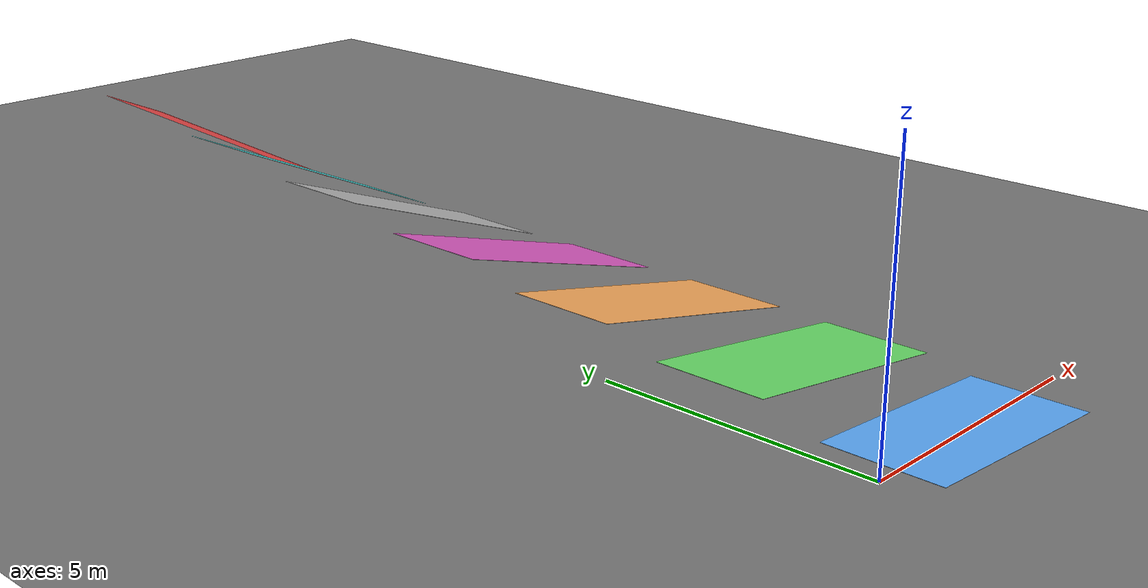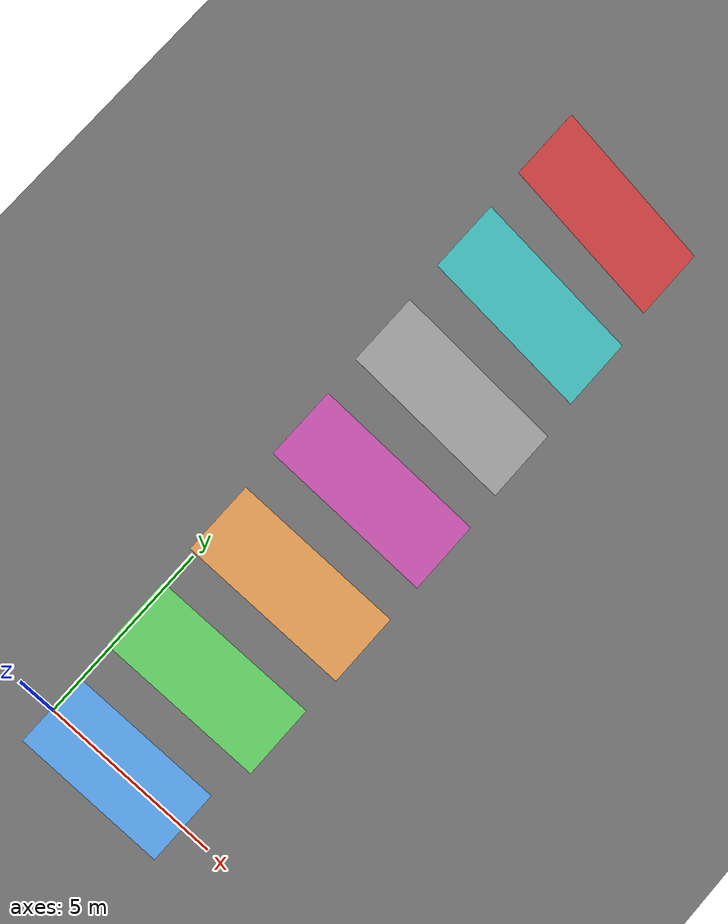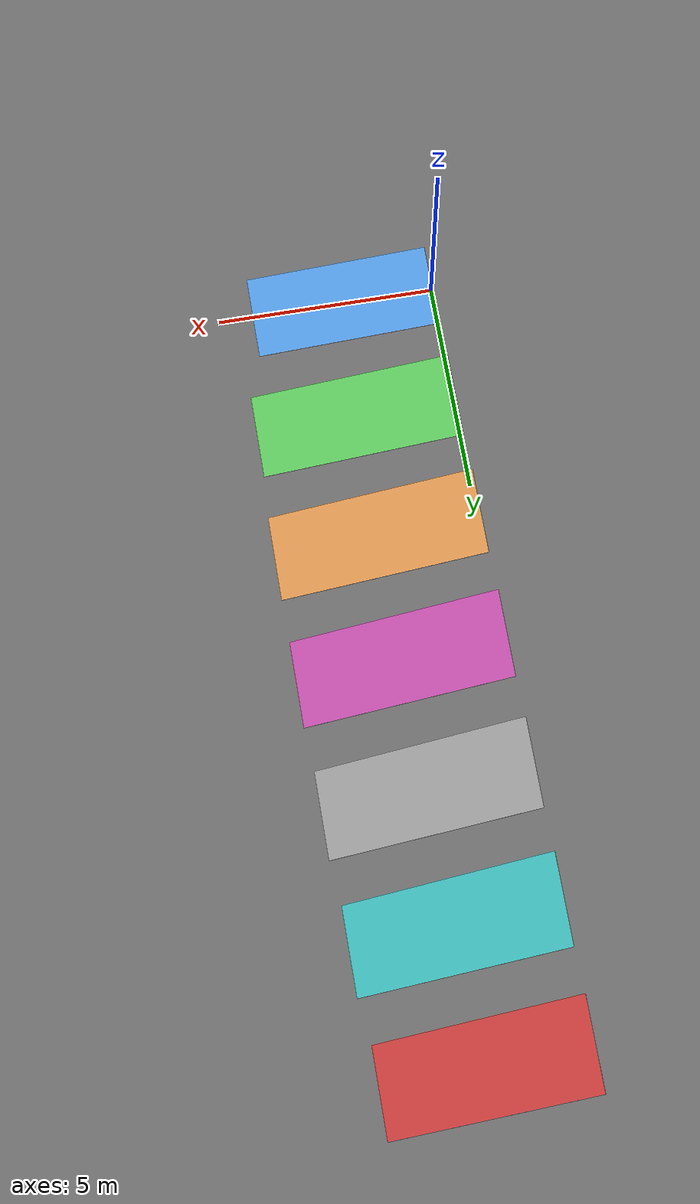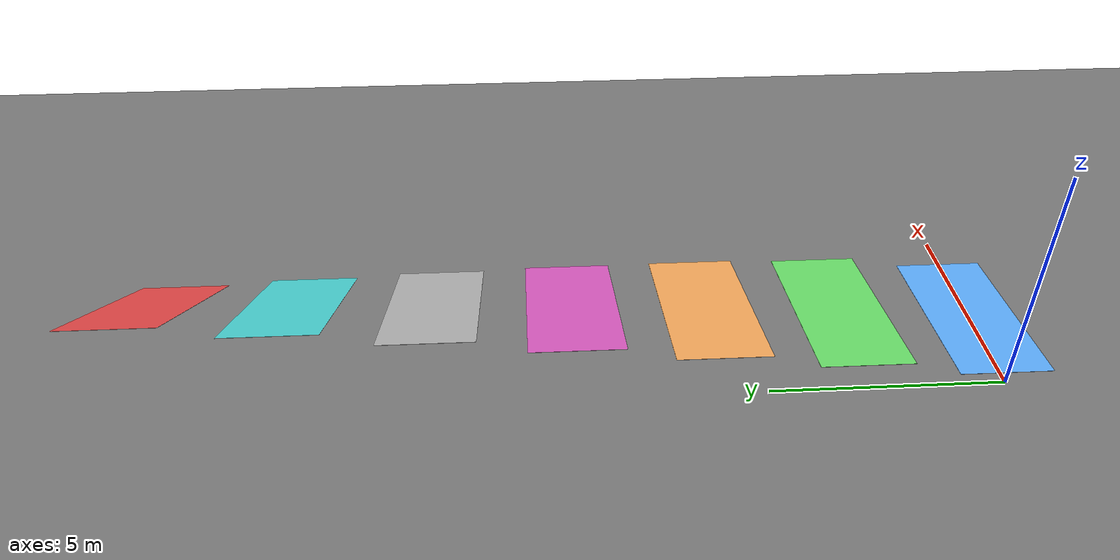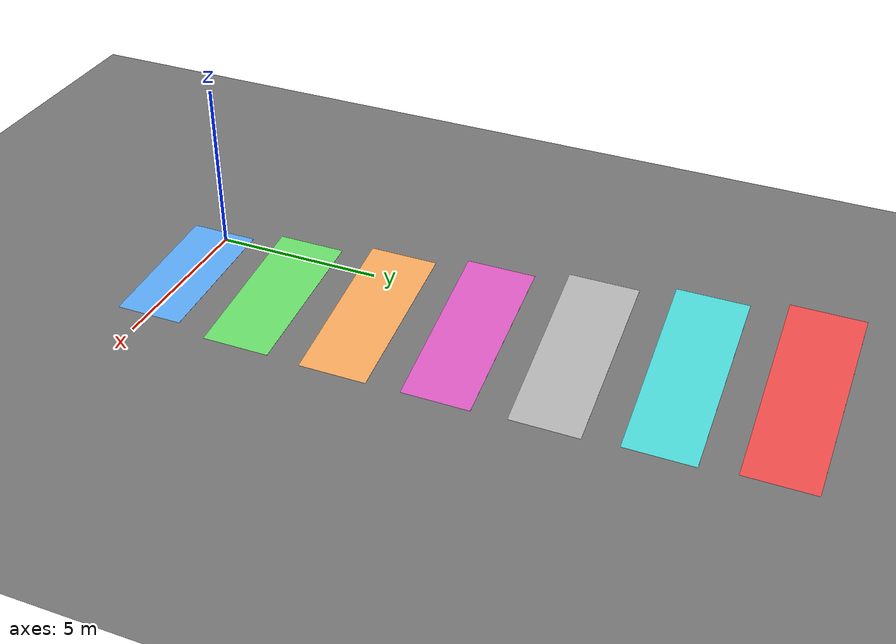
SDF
<?xml version="1.0"?>
<sdf version="1.7">
  <world name="rampe_test_thin_fix">

    <!-- Fisica -->
    <physics name="ode" type="ode">
      <max_step_size>0.001</max_step_size>
      <real_time_update_rate>1000</real_time_update_rate>
      <real_time_factor>1</real_time_factor>
    </physics>
    <gravity>0 0 -9.81</gravity>

    <!-- Luce direzionale -->
    <light type="directional" name="sun">
      <pose>0 0 10 0 0 0</pose>
      <diffuse>1 1 1 1</diffuse>
      <specular>0.1 0.1 0.1 1</specular>
      <direction>-0.5 0.5 -1</direction>
      <cast_shadows>true</cast_shadows>
    </light>

    <!-- Ground -->
    <model name="ground">
      <static>true</static>
      <link name="link">
        <collision name="col"><geometry><plane><normal>0 0 1</normal><size>200 200</size></plane></geometry></collision>
        <visual name="vis">
          <geometry><plane><normal>0 0 1</normal><size>200 200</size></plane></geometry>
          <material><ambient>0.4 0.4 0.4 1</ambient><diffuse>0.45 0.45 0.45 1</diffuse></material>
        </visual>
      </link>
    </model>

    <!-- Parametri rampe: L=5, W=2, T=0.05. Affiancate lungo Y (0,3,6,9,12,15,18). Si sale verso +X. -->

    <model name="rampa_04">
      <static>true</static>
      <pose>2.495 0 0.097 0 0.069813 0</pose>
      <link name="link">
        <collision name="col"><geometry><box><size>5 2 0.005</size></box></geometry></collision>
        <visual name="vis"><geometry><box><size>5 2 0.005</size></box></geometry>
          <material><ambient>0.35 0.65 0.95 1</ambient><diffuse>0.35 0.65 0.95 1</diffuse></material></visual>
      </link>
    </model>

    <model name="rampa_08">
      <static>true</static>
      <pose>2.474 3 0.271 0 0.139626 0</pose>
      <link name="link">
        <collision name="col"><geometry><box><size>5 2 0.005</size></box></geometry></collision>
        <visual name="vis"><geometry><box><size>5 2 0.005</size></box></geometry>
          <material><ambient>0.40 0.85 0.40 1</ambient><diffuse>0.40 0.85 0.40 1</diffuse></material></visual>
      </link>
    </model>

    <model name="rampa_12">
      <static>true</static>
      <pose>2.442 6 0.442 0 0.209440 0</pose>
        <link name="link">
        <collision name="col"><geometry><box><size>5 2 0.005</size></box></geometry></collision>
        <visual name="vis"><geometry><box><size>5 2 0.005</size></box></geometry>
          <material><ambient>0.95 0.65 0.35 1</ambient><diffuse>0.95 0.65 0.35 1</diffuse></material></visual>
      </link>
    </model>

    <model name="rampa_16">
      <static>true</static>
      <pose>2.398 9 0.611 0 0.279253 0</pose>
        <link name="link">
        <collision name="col"><geometry><box><size>5 2 0.005</size></box></geometry></collision>
        <visual name="vis"><geometry><box><size>5 2 0.005</size></box></geometry>
          <material><ambient>0.85 0.35 0.75 1</ambient><diffuse>0.85 0.35 0.75 1</diffuse></material></visual>
      </link>
    </model>

    <model name="rampa_20">
      <static>true</static>
      <pose>2.343 12 0.777 0 0.349066 0</pose>
        <link name="link">
        <collision name="col"><geometry><box><size>5 2 0.005</size></box></geometry></collision>
        <visual name="vis"><geometry><box><size>5 2 0.005</size></box></geometry>
          <material><ambient>0.70 0.70 0.70 1</ambient><diffuse>0.70 0.70 0.70 1</diffuse></material></visual>
      </link>
    </model>

    <model name="rampa_24">
      <static>true</static>
      <pose>2.276 15 0.938 0 0.418879 0</pose>
      <link name="link">
        <collision name="col"><geometry><box><size>5 2 0.005</size></box></geometry></collision>
        <visual name="vis"><geometry><box><size>5 2 0.005</size></box></geometry>
          <material><ambient>0.30 0.85 0.85 1</ambient><diffuse>0.30 0.85 0.85 1</diffuse></material></visual>
      </link>
    </model>

    <model name="rampa_28">
      <static>true</static>
      <pose>2.198 18 1.094 0 0.488692 0</pose>
      <link name="link">
        <collision name="col"><geometry><box><size>5 2 0.005</size></box></geometry></collision>
        <visual name="vis"><geometry><box><size>5 2 0.005</size></box></geometry>
          <material><ambient>0.95 0.30 0.30 1</ambient><diffuse>0.95 0.30 0.30 1</diffuse></material></visual>
      </link>
    </model>

    <!-- Camera: vista frontale verso +X -->
    <gui fullscreen="0">
      <camera name="user_camera">
        <pose>6 9 5 0 -0.2 3.14159</pose>
      </camera>
    </gui>

  </world>
</sdf>
